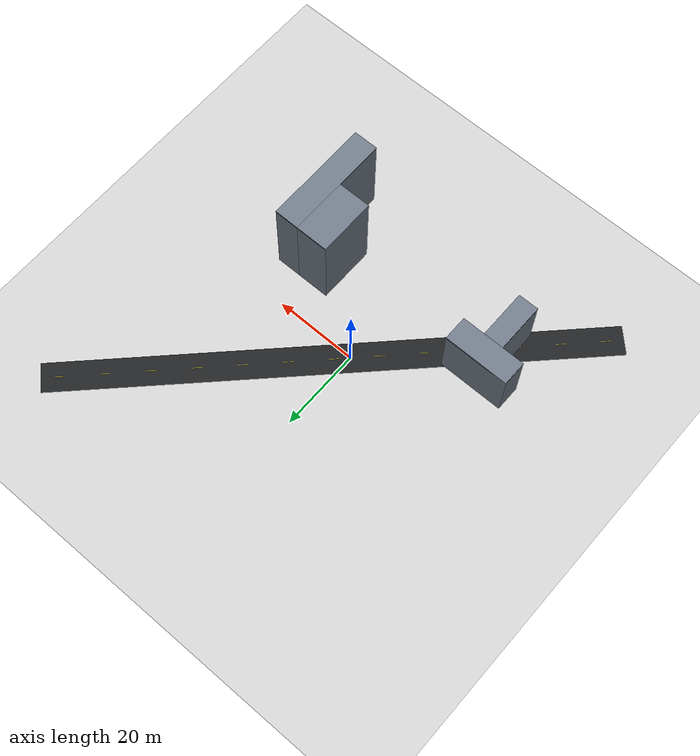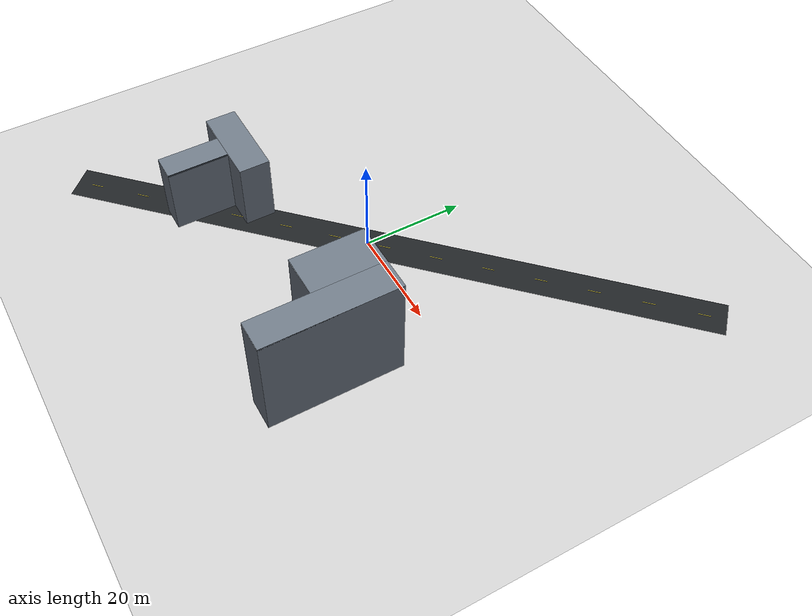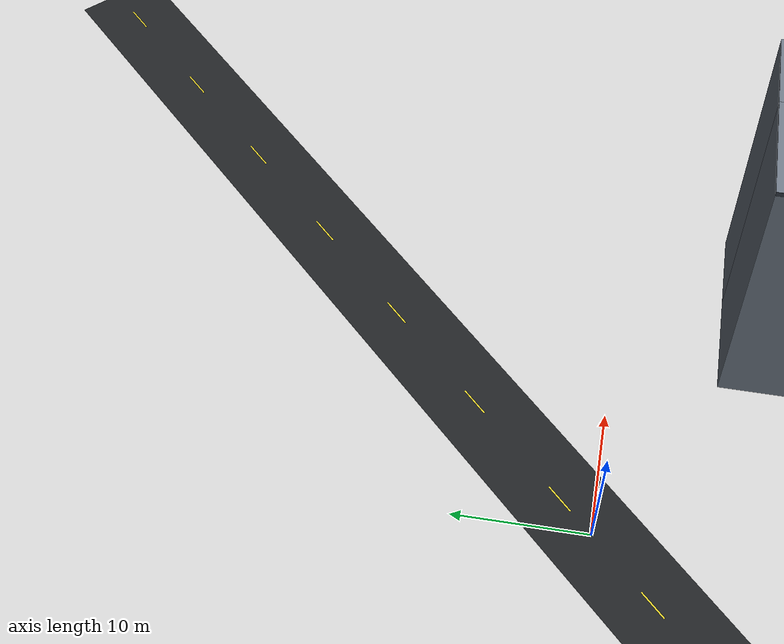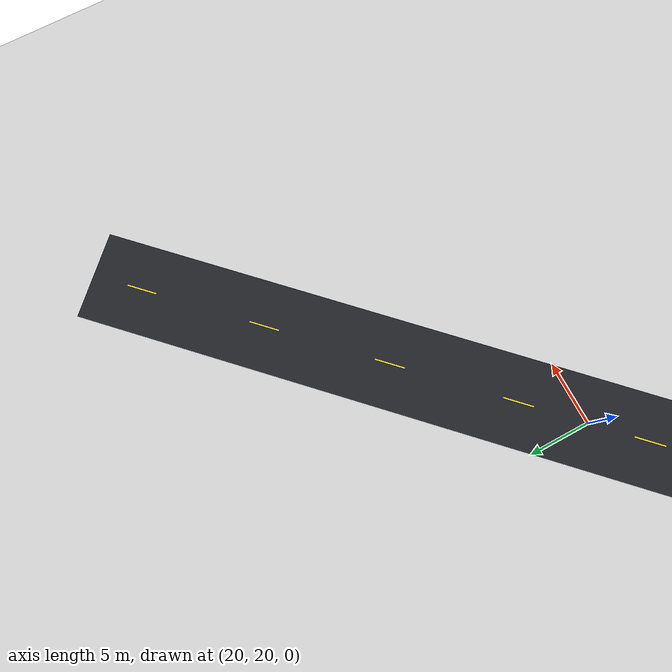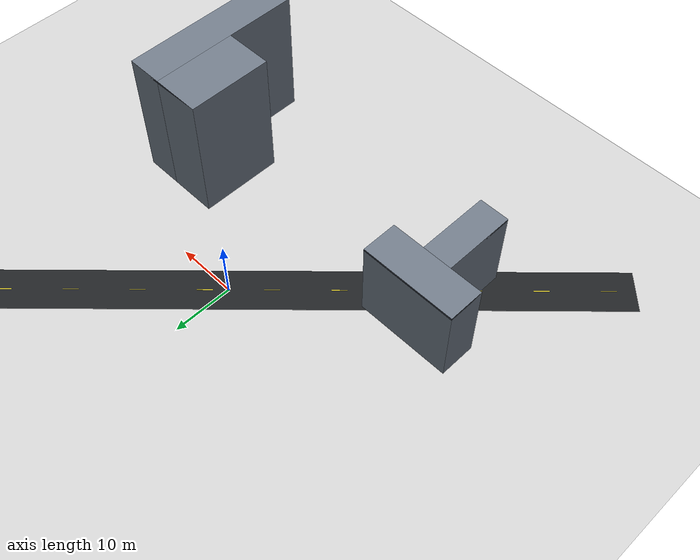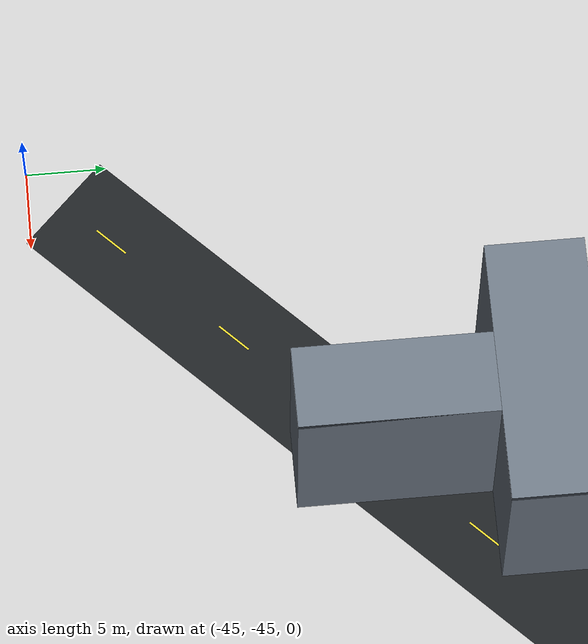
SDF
<?xml version="1.0"?>
<sdf version="1.6"><world name="logistics_0_urban_delivery">
  <physics name="default_physics" type="ode"><max_step_size>0.004</max_step_size><real_time_factor>1</real_time_factor><real_time_update_rate>250</real_time_update_rate><magnetic_field>6.0e-6 2.3e-5 -4.2e-5</magnetic_field></physics>
  <gravity>0 0 -9.8066</gravity>
  <include><uri>model://sun</uri></include>
  <include><uri>model://ground_plane</uri></include>
  <spherical_coordinates><surface_model>EARTH_WGS84</surface_model><latitude_deg>47.397742</latitude_deg><longitude_deg>8.545594</longitude_deg><elevation>488</elevation><heading_deg>0</heading_deg></spherical_coordinates>
<model name="service_road"><static>true</static><pose>2.500 2.500 0.012 0.000 0.000 0.785</pose><link name="link"><visual name="visual"><cast_shadows>false</cast_shadows><geometry><box><size>128.208 7.0 0.02</size></box></geometry><material><ambient>0.12 0.13 0.14 1</ambient><diffuse>0.12 0.13 0.14 1</diffuse></material></visual></link></model>
<model name="road_mark_00"><static>true</static><pose>-40.000 -40.000 0.026 0.000 0.000 0.785</pose><link name="link"><visual name="visual"><cast_shadows>false</cast_shadows><geometry><box><size>2.4 0.12 0.012</size></box></geometry><material><ambient>0.92 0.84 0.18 1</ambient><diffuse>0.92 0.84 0.18 1</diffuse></material></visual></link></model>
<model name="road_mark_01"><static>true</static><pose>-32.917 -32.917 0.026 0.000 0.000 0.785</pose><link name="link"><visual name="visual"><cast_shadows>false</cast_shadows><geometry><box><size>2.4 0.12 0.012</size></box></geometry><material><ambient>0.92 0.84 0.18 1</ambient><diffuse>0.92 0.84 0.18 1</diffuse></material></visual></link></model>
<model name="road_mark_02"><static>true</static><pose>-25.833 -25.833 0.026 0.000 0.000 0.785</pose><link name="link"><visual name="visual"><cast_shadows>false</cast_shadows><geometry><box><size>2.4 0.12 0.012</size></box></geometry><material><ambient>0.92 0.84 0.18 1</ambient><diffuse>0.92 0.84 0.18 1</diffuse></material></visual></link></model>
<model name="road_mark_03"><static>true</static><pose>-18.750 -18.750 0.026 0.000 0.000 0.785</pose><link name="link"><visual name="visual"><cast_shadows>false</cast_shadows><geometry><box><size>2.4 0.12 0.012</size></box></geometry><material><ambient>0.92 0.84 0.18 1</ambient><diffuse>0.92 0.84 0.18 1</diffuse></material></visual></link></model>
<model name="road_mark_04"><static>true</static><pose>-11.667 -11.667 0.026 0.000 0.000 0.785</pose><link name="link"><visual name="visual"><cast_shadows>false</cast_shadows><geometry><box><size>2.4 0.12 0.012</size></box></geometry><material><ambient>0.92 0.84 0.18 1</ambient><diffuse>0.92 0.84 0.18 1</diffuse></material></visual></link></model>
<model name="road_mark_05"><static>true</static><pose>-4.583 -4.583 0.026 0.000 0.000 0.785</pose><link name="link"><visual name="visual"><cast_shadows>false</cast_shadows><geometry><box><size>2.4 0.12 0.012</size></box></geometry><material><ambient>0.92 0.84 0.18 1</ambient><diffuse>0.92 0.84 0.18 1</diffuse></material></visual></link></model>
<model name="road_mark_06"><static>true</static><pose>2.500 2.500 0.026 0.000 0.000 0.785</pose><link name="link"><visual name="visual"><cast_shadows>false</cast_shadows><geometry><box><size>2.4 0.12 0.012</size></box></geometry><material><ambient>0.92 0.84 0.18 1</ambient><diffuse>0.92 0.84 0.18 1</diffuse></material></visual></link></model>
<model name="road_mark_07"><static>true</static><pose>9.583 9.583 0.026 0.000 0.000 0.785</pose><link name="link"><visual name="visual"><cast_shadows>false</cast_shadows><geometry><box><size>2.4 0.12 0.012</size></box></geometry><material><ambient>0.92 0.84 0.18 1</ambient><diffuse>0.92 0.84 0.18 1</diffuse></material></visual></link></model>
<model name="road_mark_08"><static>true</static><pose>16.667 16.667 0.026 0.000 0.000 0.785</pose><link name="link"><visual name="visual"><cast_shadows>false</cast_shadows><geometry><box><size>2.4 0.12 0.012</size></box></geometry><material><ambient>0.92 0.84 0.18 1</ambient><diffuse>0.92 0.84 0.18 1</diffuse></material></visual></link></model>
<model name="road_mark_09"><static>true</static><pose>23.750 23.750 0.026 0.000 0.000 0.785</pose><link name="link"><visual name="visual"><cast_shadows>false</cast_shadows><geometry><box><size>2.4 0.12 0.012</size></box></geometry><material><ambient>0.92 0.84 0.18 1</ambient><diffuse>0.92 0.84 0.18 1</diffuse></material></visual></link></model>
<model name="road_mark_10"><static>true</static><pose>30.833 30.833 0.026 0.000 0.000 0.785</pose><link name="link"><visual name="visual"><cast_shadows>false</cast_shadows><geometry><box><size>2.4 0.12 0.012</size></box></geometry><material><ambient>0.92 0.84 0.18 1</ambient><diffuse>0.92 0.84 0.18 1</diffuse></material></visual></link></model>
<model name="road_mark_11"><static>true</static><pose>37.917 37.917 0.026 0.000 0.000 0.785</pose><link name="link"><visual name="visual"><cast_shadows>false</cast_shadows><geometry><box><size>2.4 0.12 0.012</size></box></geometry><material><ambient>0.92 0.84 0.18 1</ambient><diffuse>0.92 0.84 0.18 1</diffuse></material></visual></link></model>
<model name="road_mark_12"><static>true</static><pose>45.000 45.000 0.026 0.000 0.000 0.785</pose><link name="link"><visual name="visual"><cast_shadows>false</cast_shadows><geometry><box><size>2.4 0.12 0.012</size></box></geometry><material><ambient>0.92 0.84 0.18 1</ambient><diffuse>0.92 0.84 0.18 1</diffuse></material></visual></link></model>
<model name="obstacle_00_shopping_centre_part_0"><static>true</static><pose>-24.000 -24.000 7.000 0 0 0</pose><link name="link"><collision name="collision"><geometry><box><size>5.000 12.000 14.000</size></box></geometry></collision><visual name="visual"><geometry><box><size>5.000 12.000 14.000</size></box></geometry><material><ambient>0.43 0.47 0.52 1</ambient><diffuse>0.43 0.47 0.52 1</diffuse></material></visual></link></model>
<model name="obstacle_00_shopping_centre_part_0_roof"><static>true</static><pose>-24.000 -24.000 13.820 0.000 0.000 0.000</pose><link name="link"><visual name="visual"><cast_shadows>false</cast_shadows><geometry><box><size>5.000 12.000 0.360</size></box></geometry><material><ambient>0.20 0.23 0.27 1</ambient><diffuse>0.20 0.23 0.27 1</diffuse></material></visual></link></model>
<model name="obstacle_00_shopping_centre_part_1"><static>true</static><pose>-24.000 -15.000 7.000 0 0 0</pose><link name="link"><collision name="collision"><geometry><box><size>16.000 6.000 14.000</size></box></geometry></collision><visual name="visual"><geometry><box><size>16.000 6.000 14.000</size></box></geometry><material><ambient>0.43 0.47 0.52 1</ambient><diffuse>0.43 0.47 0.52 1</diffuse></material></visual></link></model>
<model name="obstacle_00_shopping_centre_part_1_roof"><static>true</static><pose>-24.000 -15.000 13.820 0.000 0.000 0.000</pose><link name="link"><visual name="visual"><cast_shadows>false</cast_shadows><geometry><box><size>16.000 6.000 0.360</size></box></geometry><material><ambient>0.20 0.23 0.27 1</ambient><diffuse>0.20 0.23 0.27 1</diffuse></material></visual></link></model>
<model name="obstacle_01_office_part_0"><static>true</static><pose>25.000 -21.000 11.000 0 0 0</pose><link name="link"><collision name="collision"><geometry><box><size>6.000 26.000 22.000</size></box></geometry></collision><visual name="visual"><geometry><box><size>6.000 26.000 22.000</size></box></geometry><material><ambient>0.43 0.47 0.52 1</ambient><diffuse>0.43 0.47 0.52 1</diffuse></material></visual></link></model>
<model name="obstacle_01_office_part_0_roof"><static>true</static><pose>25.000 -21.000 21.820 0.000 0.000 0.000</pose><link name="link"><visual name="visual"><cast_shadows>false</cast_shadows><geometry><box><size>6.000 26.000 0.360</size></box></geometry><material><ambient>0.20 0.23 0.27 1</ambient><diffuse>0.20 0.23 0.27 1</diffuse></material></visual></link></model>
<model name="obstacle_01_office_part_1"><static>true</static><pose>18.000 -15.000 11.000 0 0 0</pose><link name="link"><collision name="collision"><geometry><box><size>8.000 14.000 22.000</size></box></geometry></collision><visual name="visual"><geometry><box><size>8.000 14.000 22.000</size></box></geometry><material><ambient>0.43 0.47 0.52 1</ambient><diffuse>0.43 0.47 0.52 1</diffuse></material></visual></link></model>
<model name="obstacle_01_office_part_1_roof"><static>true</static><pose>18.000 -15.000 21.820 0.000 0.000 0.000</pose><link name="link"><visual name="visual"><cast_shadows>false</cast_shadows><geometry><box><size>8.000 14.000 0.360</size></box></geometry><material><ambient>0.20 0.23 0.27 1</ambient><diffuse>0.20 0.23 0.27 1</diffuse></material></visual></link></model>
<model name="start_zone"><static>true</static><pose>-40.000 -40.000 -0.009 0 0 0</pose><link name="link"><visual name="visual"><cast_shadows>false</cast_shadows><geometry><cylinder><radius>1.5</radius><length>0.02</length></cylinder></geometry><material><ambient>0.1 0.8 0.1 1</ambient><diffuse>0.1 0.8 0.1 1</diffuse></material></visual></link></model>
<model name="goal_zone"><static>true</static><pose>45.000 45.000 -0.009 0 0 0</pose><link name="link"><visual name="visual"><cast_shadows>false</cast_shadows><geometry><cylinder><radius>1.5</radius><length>0.02</length></cylinder></geometry><material><ambient>0.9 0.15 0.1 1</ambient><diffuse>0.9 0.15 0.1 1</diffuse></material></visual></link></model>
</world></sdf>
